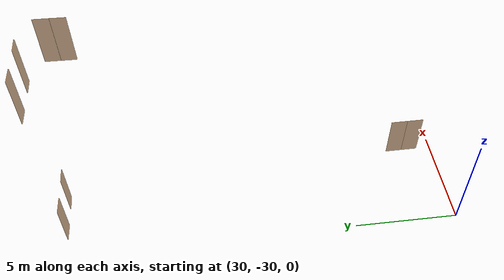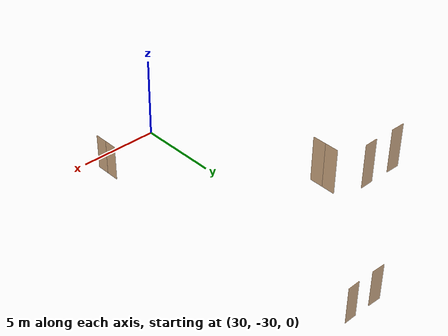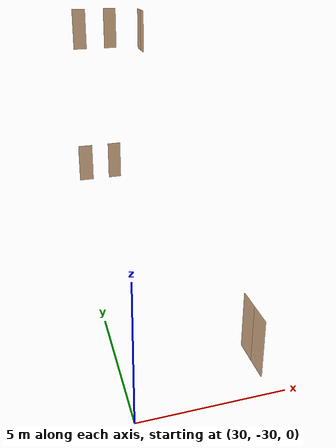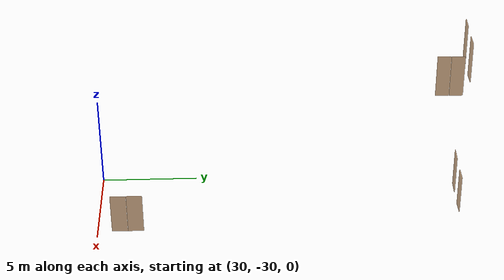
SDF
<sdf version="1.7">
 <world name="sim_world">
  <model name="TD1016AA">
   <pose>34.49816555542807 -28.447820130466024 0.0 0 0 1.5747833511723939</pose>
   <link name="right">
    <pose>0.4123607880446388 0 1.11 0 0 0</pose>
    <visual name="right_visual">
     <geometry><box><size>0.8147215760892776 0.03 2.2</size></box></geometry>
     <material>
      <ambient>0.5 0.25 0 0.6</ambient>
      <diffuse>0.5 0.25 0 0.6</diffuse>
      <pbr><metal><metalness>0.0</metalness></metal></pbr>
     </material>
    </visual>
    <collision name="right_collision">
     <geometry><box><size>0.8147215760892776 0.03 2.2</size></box></geometry>
     <surface><contact><collide_bitmask>0x02</collide_bitmask></contact></surface>
    </collision>
    <inertial>
     <mass>50.0</mass>
     <inertia><ixx>20.17041666666667</ixx><iyy>22.93238019393916</iyy><izz>2.769463527272486</izz></inertia>
    </inertial>
   </link>
   <joint name="right_joint" type="revolute">
    <parent>world</parent>
    <child>right</child>
    <axis><xyz>0 0 -1</xyz><limit><lower>0</lower><upper>1.57</upper></limit></axis>
    <pose>0.4123607880446388 0 0 0 0 0</pose>
   </joint>
   <link name="left">
    <pose>-0.4123607880446388 0 1.11 0 0 0</pose>
    <visual name="left_visual">
     <geometry><box><size>0.8147215760892776 0.03 2.2</size></box></geometry>
     <material>
      <ambient>0.5 0.25 0 0.6</ambient>
      <diffuse>0.5 0.25 0 0.6</diffuse>
      <pbr><metal><metalness>0.0</metalness></metal></pbr>
     </material>
    </visual>
    <collision name="left_collision">
     <geometry><box><size>0.8147215760892776 0.03 2.2</size></box></geometry>
     <surface><contact><collide_bitmask>0x02</collide_bitmask></contact></surface>
    </collision>
    <inertial>
     <mass>50.0</mass>
     <inertia><ixx>20.17041666666667</ixx><iyy>22.93238019393916</iyy><izz>2.769463527272486</izz></inertia>
    </inertial>
   </link>
   <joint name="left_joint" type="revolute">
    <parent>world</parent>
    <child>left</child>
    <axis><xyz>0 0 -1</xyz><limit><lower>-1.57</lower><upper>0</upper></limit></axis>
    <pose>-0.4123607880446388 0 0 0 0 0</pose>
   </joint>
   <plugin name="register_component" filename="libregister_component.so">
    <component name="Door">
     <v_max_door>0.5</v_max_door>
     <a_max_door>0.3</a_max_door>
     <a_nom_door>0.15</a_nom_door>
     <dx_min_door>0.01</dx_min_door>
     <f_max_door>500.0</f_max_door>
     <ros_interface>true</ros_interface>
     <door name="TD1016AA" type="DoubleSwingDoor" left_joint_name="left_joint" right_joint_name="right_joint"/>
    </component>
   </plugin>
  </model>
  <model name="em2">
   <pose>33.0865727852599 -11.178082443157725 0.0 0 0 0.03191096870064347</pose>
   <link name="right">
    <pose>0 0 1.11 0 0 0</pose>
    <visual name="right_visual">
     <geometry><box><size>0.7504608987853366 0.03 2.2</size></box></geometry>
     <material>
      <ambient>0.5 0.25 0 0.6</ambient>
      <diffuse>0.5 0.25 0 0.6</diffuse>
      <pbr><metal><metalness>0.0</metalness></metal></pbr>
     </material>
    </visual>
    <collision name="right_collision">
     <geometry><box><size>0.7504608987853366 0.03 2.2</size></box></geometry>
     <surface><contact><collide_bitmask>0x02</collide_bitmask></contact></surface>
    </collision>
    <inertial>
     <mass>50.0</mass>
     <inertia><ixx>20.17041666666667</ixx><iyy>22.5132981691904</iyy><izz>2.3503815025237302</izz></inertia>
    </inertial>
   </link>
   <joint name="right_joint" type="revolute">
    <parent>world</parent>
    <child>right</child>
    <axis><xyz>0 0 -1</xyz><limit><lower>0</lower><upper>1.57</upper></limit></axis>
    <pose>0.3802304493926683 0 0 0 0 0</pose>
   </joint>
   <plugin name="register_component" filename="libregister_component.so">
    <component name="Door">
     <v_max_door>0.5</v_max_door>
     <a_max_door>0.3</a_max_door>
     <a_nom_door>0.15</a_nom_door>
     <dx_min_door>0.01</dx_min_door>
     <f_max_door>500.0</f_max_door>
     <ros_interface>true</ros_interface>
     <door name="em2" type="SwingDoor" left_joint_name="empty_joint" right_joint_name="right_joint"/>
    </component>
   </plugin>
  </model>
  <model name="em1">
   <pose>31.33196599077849 -11.186173825834967 0.0 0 0 3.131795982307093</pose>
   <link name="right">
    <pose>0 0 1.11 0 0 0</pose>
    <visual name="right_visual">
     <geometry><box><size>0.8147994904935095 0.03 2.2</size></box></geometry>
     <material>
      <ambient>0.5 0.25 0 0.6</ambient>
      <diffuse>0.5 0.25 0 0.6</diffuse>
      <pbr><metal><metalness>0.0</metalness></metal></pbr>
     </material>
    </visual>
    <collision name="right_collision">
     <geometry><box><size>0.8147994904935095 0.03 2.2</size></box></geometry>
     <surface><contact><collide_bitmask>0x02</collide_bitmask></contact></surface>
    </collision>
    <inertial>
     <mass>50.0</mass>
     <inertia><ixx>20.17041666666667</ixx><iyy>22.93290920711868</iyy><izz>2.7699925404520114</izz></inertia>
    </inertial>
   </link>
   <joint name="right_joint" type="revolute">
    <parent>world</parent>
    <child>right</child>
    <axis><xyz>0 0 1</xyz><limit><lower>0</lower><upper>1.57</upper></limit></axis>
    <pose>0.41239974524675477 0 0 0 0 0</pose>
   </joint>
   <plugin name="register_component" filename="libregister_component.so">
    <component name="Door">
     <v_max_door>0.5</v_max_door>
     <a_max_door>0.3</a_max_door>
     <a_nom_door>0.15</a_nom_door>
     <dx_min_door>0.01</dx_min_door>
     <f_max_door>500.0</f_max_door>
     <ros_interface>true</ros_interface>
     <door name="em1" type="SwingDoor" left_joint_name="empty_joint" right_joint_name="right_joint"/>
    </component>
   </plugin>
  </model>
  <model name="d2">
   <pose>33.059571625828255 -11.182166293832482 8.0 0 0 0.03094497696470782</pose>
   <link name="right">
    <pose>0 0 1.11 0 0 0</pose>
    <visual name="right_visual">
     <geometry><box><size>0.6926931969739676 0.03 2.2</size></box></geometry>
     <material>
      <ambient>0.5 0.25 0 0.6</ambient>
      <diffuse>0.5 0.25 0 0.6</diffuse>
      <pbr><metal><metalness>0.0</metalness></metal></pbr>
     </material>
    </visual>
    <collision name="right_collision">
     <geometry><box><size>0.6926931969739676 0.03 2.2</size></box></geometry>
     <surface><contact><collide_bitmask>0x02</collide_bitmask></contact></surface>
    </collision>
    <inertial>
     <mass>50.0</mass>
     <inertia><ixx>20.17041666666667</ixx><iyy>22.165932771391738</iyy><izz>2.0030161047250665</izz></inertia>
    </inertial>
   </link>
   <joint name="right_joint" type="revolute">
    <parent>world</parent>
    <child>right</child>
    <axis><xyz>0 0 -1</xyz><limit><lower>0</lower><upper>1.57</upper></limit></axis>
    <pose>0.3513465984869838 0 0 0 0 0</pose>
   </joint>
   <plugin name="register_component" filename="libregister_component.so">
    <component name="Door">
     <v_max_door>0.5</v_max_door>
     <a_max_door>0.3</a_max_door>
     <a_nom_door>0.15</a_nom_door>
     <dx_min_door>0.01</dx_min_door>
     <f_max_door>500.0</f_max_door>
     <ros_interface>true</ros_interface>
     <door name="d2" type="SwingDoor" left_joint_name="empty_joint" right_joint_name="right_joint"/>
    </component>
   </plugin>
  </model>
  <model name="d1">
   <pose>31.3333783748407 -11.187873680363586 8.0 0 0 -3.1414135882629974</pose>
   <link name="right">
    <pose>0 0 1.11 0 0 0</pose>
    <visual name="right_visual">
     <geometry><box><size>0.7193857536835634 0.03 2.2</size></box></geometry>
     <material>
      <ambient>0.5 0.25 0 0.6</ambient>
      <diffuse>0.5 0.25 0 0.6</diffuse>
      <pbr><metal><metalness>0.0</metalness></metal></pbr>
     </material>
    </visual>
    <collision name="right_collision">
     <geometry><box><size>0.7193857536835634 0.03 2.2</size></box></geometry>
     <surface><contact><collide_bitmask>0x02</collide_bitmask></contact></surface>
    </collision>
    <inertial>
     <mass>50.0</mass>
     <inertia><ixx>20.17041666666667</ixx><iyy>22.322982760845292</iyy><izz>2.160066094178619</izz></inertia>
    </inertial>
   </link>
   <joint name="right_joint" type="revolute">
    <parent>world</parent>
    <child>right</child>
    <axis><xyz>0 0 1</xyz><limit><lower>0</lower><upper>1.57</upper></limit></axis>
    <pose>0.3646928768417817 0 0 0 0 0</pose>
   </joint>
   <plugin name="register_component" filename="libregister_component.so">
    <component name="Door">
     <v_max_door>0.5</v_max_door>
     <a_max_door>0.3</a_max_door>
     <a_nom_door>0.15</a_nom_door>
     <dx_min_door>0.01</dx_min_door>
     <f_max_door>500.0</f_max_door>
     <ros_interface>true</ros_interface>
     <door name="d1" type="SwingDoor" left_joint_name="empty_joint" right_joint_name="right_joint"/>
    </component>
   </plugin>
  </model>
  <model name="TD1103">
   <pose>34.555627519648425 -12.380845192821173 8.0 0 0 1.554301982959703</pose>
   <link name="right">
    <pose>0.3385902432608419 0 1.11 0 0 0</pose>
    <visual name="right_visual">
     <geometry><box><size>0.6671804865216838 0.03 2.2</size></box></geometry>
     <material>
      <ambient>0.5 0.25 0 0.6</ambient>
      <diffuse>0.5 0.25 0 0.6</diffuse>
      <pbr><metal><metalness>0.0</metalness></metal></pbr>
     </material>
    </visual>
    <collision name="right_collision">
     <geometry><box><size>0.6671804865216838 0.03 2.2</size></box></geometry>
     <surface><contact><collide_bitmask>0x02</collide_bitmask></contact></surface>
    </collision>
    <inertial>
     <mass>50.0</mass>
     <inertia><ixx>20.17041666666667</ixx><iyy>22.0213741733138</iyy><izz>1.8584575066471283</izz></inertia>
    </inertial>
   </link>
   <joint name="right_joint" type="revolute">
    <parent>world</parent>
    <child>right</child>
    <axis><xyz>0 0 -1</xyz><limit><lower>0</lower><upper>1.57</upper></limit></axis>
    <pose>0.3385902432608419 0 0 0 0 0</pose>
   </joint>
   <link name="left">
    <pose>-0.3385902432608419 0 1.11 0 0 0</pose>
    <visual name="left_visual">
     <geometry><box><size>0.6671804865216838 0.03 2.2</size></box></geometry>
     <material>
      <ambient>0.5 0.25 0 0.6</ambient>
      <diffuse>0.5 0.25 0 0.6</diffuse>
      <pbr><metal><metalness>0.0</metalness></metal></pbr>
     </material>
    </visual>
    <collision name="left_collision">
     <geometry><box><size>0.6671804865216838 0.03 2.2</size></box></geometry>
     <surface><contact><collide_bitmask>0x02</collide_bitmask></contact></surface>
    </collision>
    <inertial>
     <mass>50.0</mass>
     <inertia><ixx>20.17041666666667</ixx><iyy>22.0213741733138</iyy><izz>1.8584575066471283</izz></inertia>
    </inertial>
   </link>
   <joint name="left_joint" type="revolute">
    <parent>world</parent>
    <child>left</child>
    <axis><xyz>0 0 -1</xyz><limit><lower>-1.57</lower><upper>0</upper></limit></axis>
    <pose>-0.3385902432608419 0 0 0 0 0</pose>
   </joint>
   <plugin name="register_component" filename="libregister_component.so">
    <component name="Door">
     <v_max_door>0.5</v_max_door>
     <a_max_door>0.3</a_max_door>
     <a_nom_door>0.15</a_nom_door>
     <dx_min_door>0.01</dx_min_door>
     <f_max_door>500.0</f_max_door>
     <ros_interface>true</ros_interface>
     <door name="TD1103" type="DoubleSwingDoor" left_joint_name="left_joint" right_joint_name="right_joint"/>
    </component>
   </plugin>
  </model>
 </world>
</sdf>
